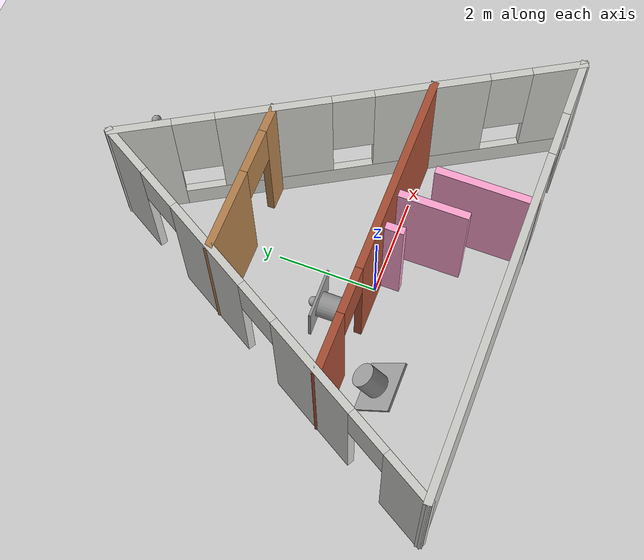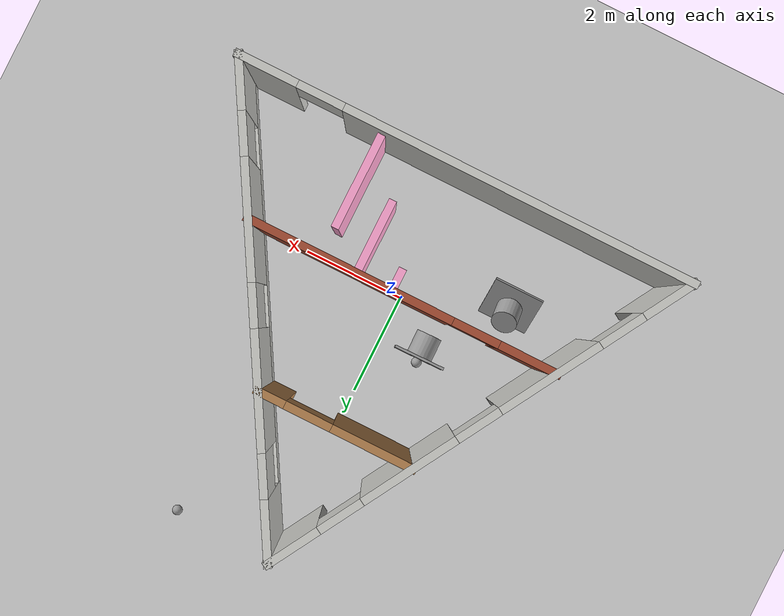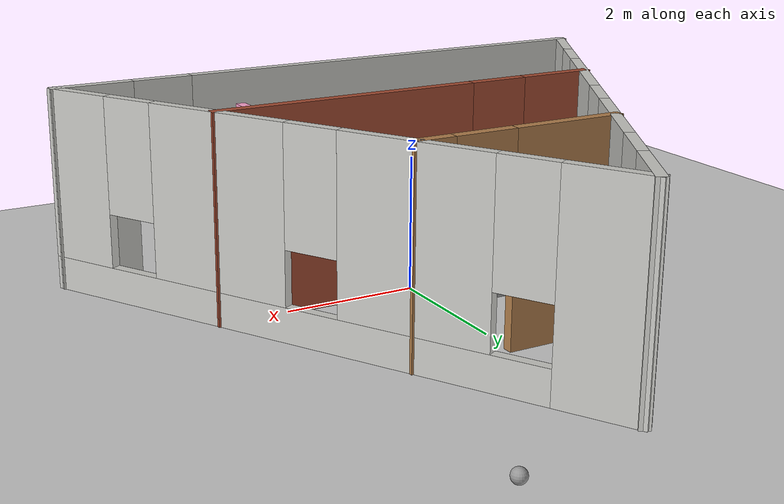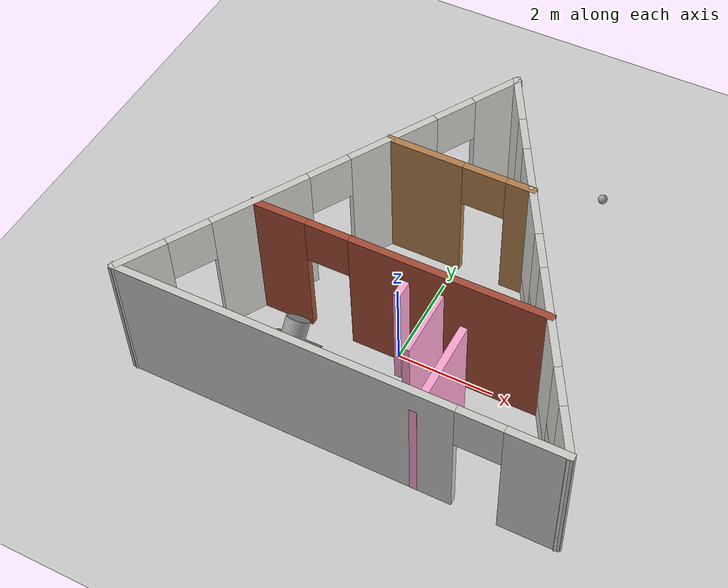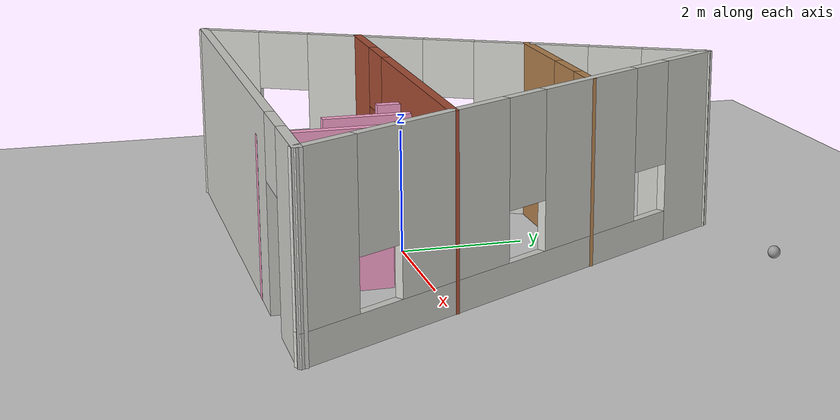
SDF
<sdf version="1.6">
 <world name="default">
  <plugin name="hello" filename="libhello.so"/>
  <light name="sun" type="directional">
   <pose>0 0 10 0 -0 0</pose>
   <diffuse>0.8 0.8 0.8 1</diffuse>
   <specular>0.2 0.2 0.2 1</specular>
   <attenuation>
    <range>1000</range>
    <constant>0.9</constant>
    <linear>0.01</linear>
    <quadratic>0.001</quadratic>
   </attenuation>
   <direction>-0.5 0.1 -0.9</direction>
  </light>
  <model name="ground_plane">
   <static>1</static>
   <link name="link">
    <collision name="collision">
     <geometry><plane><normal>0 0 1</normal><size>100 100</size></plane></geometry>
     <surface>
      <contact><collide_bitmask>65535</collide_bitmask></contact>
      <friction><ode><mu>100</mu><mu2>50</mu2></ode></friction>
     </surface>
    </collision>
    <visual name="visual">
     <cast_shadows>0</cast_shadows>
     <geometry><plane><normal>0 0 1</normal><size>100 100</size></plane></geometry>
     <material>
      <script><uri>file://media/materials/scripts/gazebo.material</uri><name>Gazebo/Grey</name></script>
     </material>
    </visual>
   </link>
  </model>
  <gravity>0 0 -9.8</gravity>
  <magnetic_field>6e-06 2.3e-05 -4.2e-05</magnetic_field>
  <atmosphere type="adiabatic"/>
  <physics name="default_physics" default="0" type="ode">
   <max_step_size>0.001</max_step_size>
   <real_time_factor>1</real_time_factor>
   <real_time_update_rate>1000</real_time_update_rate>
  </physics>
  <scene><ambient>0.4 0.4 0.4 1</ambient><background>0.7 0.7 0.7 1</background><shadows>1</shadows></scene>
  <spherical_coordinates>
   <surface_model>EARTH_WGS84</surface_model>
   <latitude_deg>0</latitude_deg>
   <longitude_deg>0</longitude_deg>
   <elevation>0</elevation>
   <heading_deg>0</heading_deg>
  </spherical_coordinates>
  <model name="roboto">
   <link name="link_1">
    <pose>0 0 0.183333 0 -0 0</pose>
    <inertial>
     <mass>0.152425</mass>
     <inertia>
      <ixx>0.00629725</ixx>
      <ixy>0</ixy>
      <ixz>0</ixz>
      <iyy>0.00629725</iyy>
      <iyz>0</iyz>
      <izz>0.00549224</izz>
     </inertia>
    </inertial>
    <visual name="visual">
     <geometry><cylinder><radius>0.25</radius><length>0.5</length></cylinder></geometry>
     <material>
      <lighting>1</lighting>
      <script><uri>file://media/materials/scripts/gazebo.material</uri><name>Gazebo/Grey</name></script>
      <shader type="pixel"><normal_map>__default__</normal_map></shader>
      <ambient>0.3 0.3 0.3 1</ambient>
      <diffuse>0.7 0.7 0.7 1</diffuse>
      <specular>0.01 0.01 0.01 1</specular>
      <emissive>0 0 0 1</emissive>
     </material>
    </visual>
    <collision name="collision">
     <geometry><cylinder><radius>0.25</radius><length>0.5</length></cylinder></geometry>
     <surface>
      <friction>
       <ode><mu>1</mu><mu2>1</mu2><fdir1>0 0 0</fdir1><slip1>0</slip1><slip2>0</slip2></ode>
       <torsional>
        <coefficient>1</coefficient>
        <patch_radius>0</patch_radius>
        <surface_radius>0</surface_radius>
        <use_patch_radius>1</use_patch_radius>
        <ode><slip>0</slip></ode>
       </torsional>
      </friction>
      <bounce><restitution_coefficient>0</restitution_coefficient><threshold>1e+06</threshold></bounce>
      <contact>
       <collide_without_contact>0</collide_without_contact>
       <collide_without_contact_bitmask>1</collide_without_contact_bitmask>
       <collide_bitmask>1</collide_bitmask>
       <ode>
        <soft_cfm>0</soft_cfm>
        <soft_erp>0.2</soft_erp>
        <kp>1e+13</kp>
        <kd>1</kd>
        <max_vel>0.01</max_vel>
        <min_depth>0</min_depth>
       </ode>
       <bullet>
        <split_impulse>1</split_impulse>
        <split_impulse_penetration_threshold>-0.01</split_impulse_penetration_threshold>
        <soft_cfm>0</soft_cfm>
        <soft_erp>0.2</soft_erp>
        <kp>1e+13</kp>
        <kd>1</kd>
       </bullet>
      </contact>
     </surface>
    </collision>
   </link>
   <link name="link_2">
    <pose>0 0 -0.041667 0 -0 0</pose>
    <inertial>
     <mass>0.0536353</mass>
     <inertia>
      <ixx>0.00448247</ixx>
      <ixy>0</ixy>
      <ixz>0</ixz>
      <iyy>0.00448247</iyy>
      <iyz>0</iyz>
      <izz>0.00893922</izz>
     </inertia>
    </inertial>
    <visual name="visual">
     <geometry><box><size>1 1 0.05</size></box></geometry>
     <material>
      <lighting>1</lighting>
      <script><uri>file://media/materials/scripts/gazebo.material</uri><name>Gazebo/Grey</name></script>
      <shader type="pixel"><normal_map>__default__</normal_map></shader>
      <ambient>0.3 0.3 0.3 1</ambient>
      <diffuse>0.7 0.7 0.7 1</diffuse>
      <specular>0.01 0.01 0.01 1</specular>
      <emissive>0 0 0 1</emissive>
     </material>
    </visual>
    <collision name="collision">
     <geometry><box><size>1 1 0.05</size></box></geometry>
     <surface>
      <friction>
       <ode><mu>1</mu><mu2>1</mu2><fdir1>0 0 0</fdir1><slip1>0</slip1><slip2>0</slip2></ode>
       <torsional>
        <coefficient>1</coefficient>
        <patch_radius>0</patch_radius>
        <surface_radius>0</surface_radius>
        <use_patch_radius>1</use_patch_radius>
        <ode><slip>0</slip></ode>
       </torsional>
      </friction>
      <bounce><restitution_coefficient>0</restitution_coefficient><threshold>1e+06</threshold></bounce>
      <contact>
       <collide_without_contact>0</collide_without_contact>
       <collide_without_contact_bitmask>1</collide_without_contact_bitmask>
       <collide_bitmask>1</collide_bitmask>
       <ode>
        <soft_cfm>0</soft_cfm>
        <soft_erp>0.2</soft_erp>
        <kp>1e+13</kp>
        <kd>1</kd>
        <max_vel>0.01</max_vel>
        <min_depth>0</min_depth>
       </ode>
       <bullet>
        <split_impulse>1</split_impulse>
        <split_impulse_penetration_threshold>-0.01</split_impulse_penetration_threshold>
        <soft_cfm>0</soft_cfm>
        <soft_erp>0.2</soft_erp>
        <kp>1e+13</kp>
        <kd>1</kd>
       </bullet>
      </contact>
     </surface>
    </collision>
   </link>
   <link name="link_3">
    <pose>0 0 -0.141667 0 -0 0</pose>
    <inertial>
     <mass>0.0276939</mass>
     <inertia>
      <ixx>0.00025351</ixx>
      <ixy>0</ixy>
      <ixz>0</ixz>
      <iyy>0.00025351</iyy>
      <iyz>0</iyz>
      <izz>0.00025351</izz>
     </inertia>
    </inertial>
    <visual name="visual">
     <geometry><sphere><radius>0.1</radius></sphere></geometry>
     <material>
      <lighting>1</lighting>
      <script><uri>file://media/materials/scripts/gazebo.material</uri><name>Gazebo/Grey</name></script>
      <shader type="pixel"><normal_map>__default__</normal_map></shader>
      <ambient>0.3 0.3 0.3 1</ambient>
      <diffuse>0.7 0.7 0.7 1</diffuse>
      <specular>0.01 0.01 0.01 1</specular>
      <emissive>0 0 0 1</emissive>
     </material>
    </visual>
    <collision name="collision">
     <geometry><sphere><radius>0.1</radius></sphere></geometry>
     <surface>
      <friction>
       <ode><mu>1</mu><mu2>1</mu2><fdir1>0 0 0</fdir1><slip1>0</slip1><slip2>0</slip2></ode>
       <torsional>
        <coefficient>1</coefficient>
        <patch_radius>0</patch_radius>
        <surface_radius>0</surface_radius>
        <use_patch_radius>1</use_patch_radius>
        <ode><slip>0</slip></ode>
       </torsional>
      </friction>
      <bounce><restitution_coefficient>0</restitution_coefficient><threshold>1e+06</threshold></bounce>
      <contact>
       <collide_without_contact>0</collide_without_contact>
       <collide_without_contact_bitmask>1</collide_without_contact_bitmask>
       <collide_bitmask>1</collide_bitmask>
       <ode>
        <soft_cfm>0</soft_cfm>
        <soft_erp>0.2</soft_erp>
        <kp>1e+13</kp>
        <kd>1</kd>
        <max_vel>0.01</max_vel>
        <min_depth>0</min_depth>
       </ode>
       <bullet>
        <split_impulse>1</split_impulse>
        <split_impulse_penetration_threshold>-0.01</split_impulse_penetration_threshold>
        <soft_cfm>0</soft_cfm>
        <soft_erp>0.2</soft_erp>
        <kp>1e+13</kp>
        <kd>1</kd>
       </bullet>
      </contact>
     </surface>
    </collision>
   </link>
   <joint name="link_2_JOINT_0" type="ball">
    <parent>link_2</parent>
    <child>link_3</child>
    <physics>
     <ode><limit><cfm>0</cfm><erp>0.2</erp></limit><suspension><cfm>0</cfm><erp>0.2</erp></suspension></ode>
    </physics>
   </joint>
   <joint name="link_2_JOINT_1" type="universal">
    <parent>link_2</parent>
    <child>link_1</child>
    <axis>
     <xyz>1 0 0</xyz>
     <use_parent_model_frame>0</use_parent_model_frame>
     <limit>
      <lower>-1.79769e+308</lower>
      <upper>1.79769e+308</upper>
      <effort>-1</effort>
      <velocity>-1</velocity>
     </limit>
     <dynamics>
      <spring_reference>0</spring_reference>
      <spring_stiffness>0</spring_stiffness>
      <damping>0</damping>
     </dynamics>
    </axis>
    <axis2>
     <xyz>0 1 0</xyz>
     <use_parent_model_frame>0</use_parent_model_frame>
     <dynamics>
      <spring_reference>0</spring_reference>
      <spring_stiffness>0</spring_stiffness>
      <damping>0</damping>
     </dynamics>
     <limit>
      <lower>-1.79769e+308</lower>
      <upper>1.79769e+308</upper>
      <effort>-1</effort>
      <velocity>-1</velocity>
     </limit>
    </axis2>
    <physics>
     <ode><limit><cfm>0</cfm><erp>0.2</erp></limit><suspension><cfm>0</cfm><erp>0.2</erp></suspension></ode>
    </physics>
   </joint>
   <static>0</static>
   <pose>-1.95511 -0.753035 0.269349 -0.733623 -0.002444 0.002206</pose>
  </model>
  <model name="building">
   <pose>3.5e-05 1.364 0 0 -0 0</pose>
   <link name="Wall_17">
    <pose>-3.5e-05 -3.832 0 0 -0 3.14159</pose>
    <visual name="Wall_17_Visual_0">
     <pose>-3.88835 0 1.5 0 -0 0</pose>
     <geometry><box><size>1.22339 0.15 3</size></box></geometry>
     <material>
      <script><uri>file://media/materials/scripts/gazebo.material</uri><name>Gazebo/CeilingTiled</name></script>
      <ambient>1 1 1 1</ambient>
     </material>
     <meta><layer>0</layer></meta>
    </visual>
    <collision name="Wall_17_Collision_0">
     <geometry><box><size>1.22339 0.15 3</size></box></geometry>
     <pose>-3.88835 0 1.5 0 -0 0</pose>
    </collision>
    <visual name="Wall_17_Visual_1">
     <pose>1.06169 0 1.5 0 -0 0</pose>
     <geometry><box><size>6.87671 0.15 3</size></box></geometry>
     <material>
      <script><uri>file://media/materials/scripts/gazebo.material</uri><name>Gazebo/CeilingTiled</name></script>
      <ambient>1 1 1 1</ambient>
     </material>
     <meta><layer>0</layer></meta>
    </visual>
    <collision name="Wall_17_Collision_1">
     <geometry><box><size>6.87671 0.15 3</size></box></geometry>
     <pose>1.06169 0 1.5 0 -0 0</pose>
    </collision>
    <visual name="Wall_17_Visual_2">
     <pose>-2.82666 0 2.5 0 -0 0</pose>
     <geometry><box><size>0.9 0.15 1</size></box></geometry>
     <material>
      <script><uri>file://media/materials/scripts/gazebo.material</uri><name>Gazebo/CeilingTiled</name></script>
      <ambient>1 1 1 1</ambient>
     </material>
     <meta><layer>0</layer></meta>
    </visual>
    <collision name="Wall_17_Collision_2">
     <geometry><box><size>0.9 0.15 1</size></box></geometry>
     <pose>-2.82666 0 2.5 0 -0 0</pose>
    </collision>
   </link>
   <link name="Wall_18">
    <pose>-2.21253 0 0 0 -0 1.04718</pose>
    <visual name="Wall_18_Visual_0">
     <pose>-3.94217 0 1.5 0 -0 0</pose>
     <geometry><box><size>1.11539 0.15 3</size></box></geometry>
     <material>
      <script><uri>file://media/materials/scripts/gazebo.material</uri><name>Gazebo/CeilingTiled</name></script>
      <ambient>1 1 1 1</ambient>
     </material>
     <meta><layer>0</layer></meta>
    </visual>
    <collision name="Wall_18_Collision_0">
     <geometry><box><size>1.11539 0.15 3</size></box></geometry>
     <pose>-3.94217 0 1.5 0 -0 0</pose>
    </collision>
    <visual name="Wall_18_Visual_1">
     <pose>-1.44264 0 1.5 0 -0 0</pose>
     <geometry><box><size>2.08366 0.15 3</size></box></geometry>
     <material>
      <script><uri>file://media/materials/scripts/gazebo.material</uri><name>Gazebo/CeilingTiled</name></script>
      <ambient>1 1 1 1</ambient>
     </material>
     <meta><layer>0</layer></meta>
    </visual>
    <collision name="Wall_18_Collision_1">
     <geometry><box><size>2.08366 0.15 3</size></box></geometry>
     <pose>-1.44264 0 1.5 0 -0 0</pose>
    </collision>
    <visual name="Wall_18_Visual_2">
     <pose>1.48473 0 1.5 0 -0 0</pose>
     <geometry><box><size>1.97108 0.15 3</size></box></geometry>
     <material>
      <script><uri>file://media/materials/scripts/gazebo.material</uri><name>Gazebo/CeilingTiled</name></script>
      <ambient>1 1 1 1</ambient>
     </material>
     <meta><layer>0</layer></meta>
    </visual>
    <collision name="Wall_18_Collision_2">
     <geometry><box><size>1.97108 0.15 3</size></box></geometry>
     <pose>1.48473 0 1.5 0 -0 0</pose>
    </collision>
    <visual name="Wall_18_Visual_3">
     <pose>3.93506 0 1.5 0 -0 0</pose>
     <geometry><box><size>1.12959 0.15 3</size></box></geometry>
     <material>
      <script><uri>file://media/materials/scripts/gazebo.material</uri><name>Gazebo/CeilingTiled</name></script>
      <ambient>1 1 1 1</ambient>
     </material>
     <meta><layer>0</layer></meta>
    </visual>
    <collision name="Wall_18_Collision_3">
     <geometry><box><size>1.12959 0.15 3</size></box></geometry>
     <pose>3.93506 0 1.5 0 -0 0</pose>
    </collision>
    <visual name="Wall_18_Visual_4">
     <pose>-2.93447 0 2.5 0 -0 0</pose>
     <geometry><box><size>0.9 0.15 1</size></box></geometry>
     <material>
      <script><uri>file://media/materials/scripts/gazebo.material</uri><name>Gazebo/CeilingTiled</name></script>
      <ambient>1 1 1 1</ambient>
     </material>
     <meta><layer>0</layer></meta>
    </visual>
    <collision name="Wall_18_Collision_4">
     <geometry><box><size>0.9 0.15 1</size></box></geometry>
     <pose>-2.93447 0 2.5 0 -0 0</pose>
    </collision>
    <visual name="Wall_18_Visual_5">
     <pose>0.049189 0 2.5 0 -0 0</pose>
     <geometry><box><size>0.9 0.15 1</size></box></geometry>
     <material>
      <script><uri>file://media/materials/scripts/gazebo.material</uri><name>Gazebo/CeilingTiled</name></script>
      <ambient>1 1 1 1</ambient>
     </material>
     <meta><layer>0</layer></meta>
    </visual>
    <collision name="Wall_18_Collision_5">
     <geometry><box><size>0.9 0.15 1</size></box></geometry>
     <pose>0.049189 0 2.5 0 -0 0</pose>
    </collision>
    <visual name="Wall_18_Visual_6">
     <pose>2.92027 0 2.5 0 -0 0</pose>
     <geometry><box><size>0.9 0.15 1</size></box></geometry>
     <material>
      <script><uri>file://media/materials/scripts/gazebo.material</uri><name>Gazebo/CeilingTiled</name></script>
      <ambient>1 1 1 1</ambient>
     </material>
     <meta><layer>0</layer></meta>
    </visual>
    <collision name="Wall_18_Collision_6">
     <geometry><box><size>0.9 0.15 1</size></box></geometry>
     <pose>2.92027 0 2.5 0 -0 0</pose>
    </collision>
   </link>
   <link name="Wall_19">
    <pose>2.21246 0 0 0 0 -1.04718</pose>
    <visual name="Wall_19_Visual_0">
     <pose>-3.90226 0 1.5 0 -0 0</pose>
     <geometry><box><size>1.19548 0.15 3</size></box></geometry>
     <material>
      <script><uri>file://media/materials/scripts/gazebo.material</uri><name>Gazebo/CeilingTiled</name></script>
      <ambient>1 1 1 1</ambient>
     </material>
     <meta><layer>0</layer></meta>
    </visual>
    <collision name="Wall_19_Collision_0">
     <geometry><box><size>1.19548 0.15 3</size></box></geometry>
     <pose>-3.90226 0 1.5 0 -0 0</pose>
    </collision>
    <visual name="Wall_19_Visual_1">
     <pose>0.597741 0 0.25 0 -0 0</pose>
     <geometry><box><size>7.80452 0.15 0.5</size></box></geometry>
     <material>
      <script><uri>file://media/materials/scripts/gazebo.material</uri><name>Gazebo/CeilingTiled</name></script>
      <ambient>1 1 1 1</ambient>
     </material>
     <meta><layer>0</layer></meta>
    </visual>
    <collision name="Wall_19_Collision_1">
     <geometry><box><size>7.80452 0.15 0.5</size></box></geometry>
     <pose>0.597741 0 0.25 0 -0 0</pose>
    </collision>
    <visual name="Wall_19_Visual_2">
     <pose>-1.42134 0 1.75 0 -0 0</pose>
     <geometry><box><size>2.16636 0.15 2.5</size></box></geometry>
     <material>
      <script><uri>file://media/materials/scripts/gazebo.material</uri><name>Gazebo/CeilingTiled</name></script>
      <ambient>1 1 1 1</ambient>
     </material>
     <meta><layer>0</layer></meta>
    </visual>
    <collision name="Wall_19_Collision_2">
     <geometry><box><size>2.16636 0.15 2.5</size></box></geometry>
     <pose>-1.42134 0 1.75 0 -0 0</pose>
    </collision>
    <visual name="Wall_19_Visual_3">
     <pose>1.55403 0 1.75 0 -0 0</pose>
     <geometry><box><size>2.18438 0.15 2.5</size></box></geometry>
     <material>
      <script><uri>file://media/materials/scripts/gazebo.material</uri><name>Gazebo/CeilingTiled</name></script>
      <ambient>1 1 1 1</ambient>
     </material>
     <meta><layer>0</layer></meta>
    </visual>
    <collision name="Wall_19_Collision_3">
     <geometry><box><size>2.18438 0.15 2.5</size></box></geometry>
     <pose>1.55403 0 1.75 0 -0 0</pose>
    </collision>
    <visual name="Wall_19_Visual_4">
     <pose>3.97311 0 1.75 0 -0 0</pose>
     <geometry><box><size>1.05378 0.15 2.5</size></box></geometry>
     <material>
      <script><uri>file://media/materials/scripts/gazebo.material</uri><name>Gazebo/CeilingTiled</name></script>
      <ambient>1 1 1 1</ambient>
     </material>
     <meta><layer>0</layer></meta>
    </visual>
    <collision name="Wall_19_Collision_4">
     <geometry><box><size>1.05378 0.15 2.5</size></box></geometry>
     <pose>3.97311 0 1.75 0 -0 0</pose>
    </collision>
    <visual name="Wall_19_Visual_5">
     <pose>-2.90452 0 2.15 0 -0 0</pose>
     <geometry><box><size>0.8 0.15 1.7</size></box></geometry>
     <material>
      <script><uri>file://media/materials/scripts/gazebo.material</uri><name>Gazebo/CeilingTiled</name></script>
      <ambient>1 1 1 1</ambient>
     </material>
     <meta><layer>0</layer></meta>
    </visual>
    <collision name="Wall_19_Collision_5">
     <geometry><box><size>0.8 0.15 1.7</size></box></geometry>
     <pose>-2.90452 0 2.15 0 -0 0</pose>
    </collision>
    <visual name="Wall_19_Visual_6">
     <pose>0.061841 0 2.15 0 -0 0</pose>
     <geometry><box><size>0.8 0.15 1.7</size></box></geometry>
     <material>
      <script><uri>file://media/materials/scripts/gazebo.material</uri><name>Gazebo/CeilingTiled</name></script>
      <ambient>1 1 1 1</ambient>
     </material>
     <meta><layer>0</layer></meta>
    </visual>
    <collision name="Wall_19_Collision_6">
     <geometry><box><size>0.8 0.15 1.7</size></box></geometry>
     <pose>0.061841 0 2.15 0 -0 0</pose>
    </collision>
    <visual name="Wall_19_Visual_7">
     <pose>3.04622 0 2.15 0 -0 0</pose>
     <geometry><box><size>0.8 0.15 1.7</size></box></geometry>
     <material>
      <script><uri>file://media/materials/scripts/gazebo.material</uri><name>Gazebo/CeilingTiled</name></script>
      <ambient>1 1 1 1</ambient>
     </material>
     <meta><layer>0</layer></meta>
    </visual>
    <collision name="Wall_19_Collision_7">
     <geometry><box><size>0.8 0.15 1.7</size></box></geometry>
     <pose>3.04622 0 2.15 0 -0 0</pose>
    </collision>
   </link>
   <link name="Wall_21">
    <pose>-3.5e-05 1.234 0 0 -0 0</pose>
    <visual name="Wall_21_Visual_0">
     <pose>-0.748151 0 1.5 0 -0 0</pose>
     <geometry><box><size>1.6537 0.15 3</size></box></geometry>
     <material>
      <script><uri>file://media/materials/scripts/gazebo.material</uri><name>Gazebo/Wood</name></script>
      <ambient>1 1 1 1</ambient>
     </material>
     <meta><layer>0</layer></meta>
    </visual>
    <collision name="Wall_21_Collision_0">
     <geometry><box><size>1.6537 0.15 3</size></box></geometry>
     <pose>-0.748151 0 1.5 0 -0 0</pose>
    </collision>
    <visual name="Wall_21_Visual_1">
     <pose>1.27685 0 1.5 0 -0 0</pose>
     <geometry><box><size>0.596303 0.15 3</size></box></geometry>
     <material>
      <script><uri>file://media/materials/scripts/gazebo.material</uri><name>Gazebo/Wood</name></script>
      <ambient>1 1 1 1</ambient>
     </material>
     <meta><layer>0</layer></meta>
    </visual>
    <collision name="Wall_21_Collision_1">
     <geometry><box><size>0.596303 0.15 3</size></box></geometry>
     <pose>1.27685 0 1.5 0 -0 0</pose>
    </collision>
    <visual name="Wall_21_Visual_2">
     <pose>0.528697 0 2.5 0 -0 0</pose>
     <geometry><box><size>0.9 0.15 1</size></box></geometry>
     <material>
      <script><uri>file://media/materials/scripts/gazebo.material</uri><name>Gazebo/Wood</name></script>
      <ambient>1 1 1 1</ambient>
     </material>
     <meta><layer>0</layer></meta>
    </visual>
    <collision name="Wall_21_Collision_2">
     <geometry><box><size>0.9 0.15 1</size></box></geometry>
     <pose>0.528697 0 2.5 0 -0 0</pose>
    </collision>
   </link>
   <link name="Wall_23">
    <pose>-3.5e-05 -1.364 0 0 -0 0</pose>
    <visual name="Wall_23_Visual_0">
     <pose>-2.47728 0 1.5 0 -0 0</pose>
     <geometry><box><size>1.19543 0.15 3</size></box></geometry>
     <material>
      <script><uri>file://media/materials/scripts/gazebo.material</uri><name>Gazebo/Bricks</name></script>
      <ambient>1 1 1 1</ambient>
     </material>
     <meta><layer>0</layer></meta>
    </visual>
    <collision name="Wall_23_Collision_0">
     <geometry><box><size>1.19543 0.15 3</size></box></geometry>
     <pose>-2.47728 0 1.5 0 -0 0</pose>
    </collision>
    <visual name="Wall_23_Visual_1">
     <pose>1.04772 0 1.5 0 -0 0</pose>
     <geometry><box><size>4.05457 0.15 3</size></box></geometry>
     <material>
      <script><uri>file://media/materials/scripts/gazebo.material</uri><name>Gazebo/Bricks</name></script>
      <ambient>1 1 1 1</ambient>
     </material>
     <meta><layer>0</layer></meta>
    </visual>
    <collision name="Wall_23_Collision_1">
     <geometry><box><size>4.05457 0.15 3</size></box></geometry>
     <pose>1.04772 0 1.5 0 -0 0</pose>
    </collision>
    <visual name="Wall_23_Visual_2">
     <pose>-1.42957 0 2.5 0 -0 0</pose>
     <geometry><box><size>0.9 0.15 1</size></box></geometry>
     <material>
      <script><uri>file://media/materials/scripts/gazebo.material</uri><name>Gazebo/Bricks</name></script>
      <ambient>1 1 1 1</ambient>
     </material>
     <meta><layer>0</layer></meta>
    </visual>
    <collision name="Wall_23_Collision_2">
     <geometry><box><size>0.9 0.15 1</size></box></geometry>
     <pose>-1.42957 0 2.5 0 -0 0</pose>
    </collision>
   </link>
   <link name="Wall_27">
    <collision name="Wall_27_Collision">
     <geometry><box><size>2 0.15 2.5</size></box></geometry>
     <pose>0 0 1.25 0 -0 0</pose>
    </collision>
    <visual name="Wall_27_Visual">
     <pose>0 0 1.25 0 -0 0</pose>
     <geometry><box><size>2 0.15 2.5</size></box></geometry>
     <material>
      <script><uri>file://media/materials/scripts/gazebo.material</uri><name>Gazebo/Grey</name></script>
      <ambient>1 0.647059 0.819608 1</ambient>
     </material>
     <meta><layer>0</layer></meta>
    </visual>
    <pose>1.60797 -2.909 0 0 -0 1.5708</pose>
   </link>
   <link name="Wall_32">
    <collision name="Wall_32_Collision">
     <geometry><box><size>1.5 0.15 2.5</size></box></geometry>
     <pose>0 0 1.25 0 -0 0</pose>
    </collision>
    <visual name="Wall_32_Visual">
     <pose>0 0 1.25 0 -0 0</pose>
     <geometry><box><size>1.5 0.15 2.5</size></box></geometry>
     <material>
      <script><uri>file://media/materials/scripts/gazebo.material</uri><name>Gazebo/Grey</name></script>
      <ambient>1 0.647059 0.819608 1</ambient>
     </material>
     <meta><layer>0</layer></meta>
    </visual>
    <pose>0.907965 -2.059 0 0 0 -1.5708</pose>
   </link>
   <link name="Wall_36">
    <collision name="Wall_36_Collision">
     <geometry><box><size>0.5 0.15 2.5</size></box></geometry>
     <pose>0 0 1.25 0 -0 0</pose>
    </collision>
    <visual name="Wall_36_Visual">
     <pose>0 0 1.25 0 -0 0</pose>
     <geometry><box><size>0.5 0.15 2.5</size></box></geometry>
     <material>
      <script><uri>file://media/materials/scripts/gazebo.material</uri><name>Gazebo/Grey</name></script>
      <ambient>1 0.647059 0.819608 1</ambient>
     </material>
     <meta><layer>0</layer></meta>
    </visual>
    <pose>0.207706 -1.55923 0 0 0 -1.5708</pose>
   </link>
   <static>1</static>
  </model>
  <model name="roboto_clone">
   <link name="link_1">
    <pose>0 0 0.183333 0 -0 0</pose>
    <inertial>
     <mass>0.152425</mass>
     <inertia>
      <ixx>0.00629725</ixx>
      <ixy>0</ixy>
      <ixz>0</ixz>
      <iyy>0.00629725</iyy>
      <iyz>0</iyz>
      <izz>0.00549224</izz>
     </inertia>
    </inertial>
    <visual name="visual">
     <geometry><cylinder><radius>0.25</radius><length>0.5</length></cylinder></geometry>
     <material>
      <lighting>1</lighting>
      <script><uri>file://media/materials/scripts/gazebo.material</uri><name>Gazebo/Grey</name></script>
      <shader type="pixel"><normal_map>__default__</normal_map></shader>
      <ambient>0.3 0.3 0.3 1</ambient>
      <diffuse>0.7 0.7 0.7 1</diffuse>
      <specular>0.01 0.01 0.01 1</specular>
      <emissive>0 0 0 1</emissive>
     </material>
    </visual>
    <collision name="collision">
     <geometry><cylinder><radius>0.25</radius><length>0.5</length></cylinder></geometry>
     <surface>
      <friction>
       <ode><mu>1</mu><mu2>1</mu2><fdir1>0 0 0</fdir1><slip1>0</slip1><slip2>0</slip2></ode>
       <torsional>
        <coefficient>1</coefficient>
        <patch_radius>0</patch_radius>
        <surface_radius>0</surface_radius>
        <use_patch_radius>1</use_patch_radius>
        <ode><slip>0</slip></ode>
       </torsional>
      </friction>
      <bounce><restitution_coefficient>0</restitution_coefficient><threshold>1e+06</threshold></bounce>
      <contact>
       <collide_without_contact>0</collide_without_contact>
       <collide_without_contact_bitmask>1</collide_without_contact_bitmask>
       <collide_bitmask>1</collide_bitmask>
       <ode>
        <soft_cfm>0</soft_cfm>
        <soft_erp>0.2</soft_erp>
        <kp>1e+13</kp>
        <kd>1</kd>
        <max_vel>0.01</max_vel>
        <min_depth>0</min_depth>
       </ode>
       <bullet>
        <split_impulse>1</split_impulse>
        <split_impulse_penetration_threshold>-0.01</split_impulse_penetration_threshold>
        <soft_cfm>0</soft_cfm>
        <soft_erp>0.2</soft_erp>
        <kp>1e+13</kp>
        <kd>1</kd>
       </bullet>
      </contact>
     </surface>
    </collision>
   </link>
   <link name="link_2">
    <pose>0 0 -0.041667 0 -0 0</pose>
    <inertial>
     <mass>0.0536353</mass>
     <inertia>
      <ixx>0.00448247</ixx>
      <ixy>0</ixy>
      <ixz>0</ixz>
      <iyy>0.00448247</iyy>
      <iyz>0</iyz>
      <izz>0.00893922</izz>
     </inertia>
    </inertial>
    <visual name="visual">
     <geometry><box><size>1 1 0.05</size></box></geometry>
     <material>
      <lighting>1</lighting>
      <script><uri>file://media/materials/scripts/gazebo.material</uri><name>Gazebo/Grey</name></script>
      <shader type="pixel"><normal_map>__default__</normal_map></shader>
      <ambient>0.3 0.3 0.3 1</ambient>
      <diffuse>0.7 0.7 0.7 1</diffuse>
      <specular>0.01 0.01 0.01 1</specular>
      <emissive>0 0 0 1</emissive>
     </material>
    </visual>
    <collision name="collision">
     <geometry><box><size>1 1 0.05</size></box></geometry>
     <surface>
      <friction>
       <ode><mu>1</mu><mu2>1</mu2><fdir1>0 0 0</fdir1><slip1>0</slip1><slip2>0</slip2></ode>
       <torsional>
        <coefficient>1</coefficient>
        <patch_radius>0</patch_radius>
        <surface_radius>0</surface_radius>
        <use_patch_radius>1</use_patch_radius>
        <ode><slip>0</slip></ode>
       </torsional>
      </friction>
      <bounce><restitution_coefficient>0</restitution_coefficient><threshold>1e+06</threshold></bounce>
      <contact>
       <collide_without_contact>0</collide_without_contact>
       <collide_without_contact_bitmask>1</collide_without_contact_bitmask>
       <collide_bitmask>1</collide_bitmask>
       <ode>
        <soft_cfm>0</soft_cfm>
        <soft_erp>0.2</soft_erp>
        <kp>1e+13</kp>
        <kd>1</kd>
        <max_vel>0.01</max_vel>
        <min_depth>0</min_depth>
       </ode>
       <bullet>
        <split_impulse>1</split_impulse>
        <split_impulse_penetration_threshold>-0.01</split_impulse_penetration_threshold>
        <soft_cfm>0</soft_cfm>
        <soft_erp>0.2</soft_erp>
        <kp>1e+13</kp>
        <kd>1</kd>
       </bullet>
      </contact>
     </surface>
    </collision>
   </link>
   <link name="link_3">
    <pose>0 0 -0.141667 0 -0 0</pose>
    <inertial>
     <mass>0.0276939</mass>
     <inertia>
      <ixx>0.00025351</ixx>
      <ixy>0</ixy>
      <ixz>0</ixz>
      <iyy>0.00025351</iyy>
      <iyz>0</iyz>
      <izz>0.00025351</izz>
     </inertia>
    </inertial>
    <visual name="visual">
     <geometry><sphere><radius>0.1</radius></sphere></geometry>
     <material>
      <lighting>1</lighting>
      <script><uri>file://media/materials/scripts/gazebo.material</uri><name>Gazebo/Grey</name></script>
      <shader type="pixel"><normal_map>__default__</normal_map></shader>
      <ambient>0.3 0.3 0.3 1</ambient>
      <diffuse>0.7 0.7 0.7 1</diffuse>
      <specular>0.01 0.01 0.01 1</specular>
      <emissive>0 0 0 1</emissive>
     </material>
    </visual>
    <collision name="collision">
     <geometry><sphere><radius>0.1</radius></sphere></geometry>
     <surface>
      <friction>
       <ode><mu>1</mu><mu2>1</mu2><fdir1>0 0 0</fdir1><slip1>0</slip1><slip2>0</slip2></ode>
       <torsional>
        <coefficient>1</coefficient>
        <patch_radius>0</patch_radius>
        <surface_radius>0</surface_radius>
        <use_patch_radius>1</use_patch_radius>
        <ode><slip>0</slip></ode>
       </torsional>
      </friction>
      <bounce><restitution_coefficient>0</restitution_coefficient><threshold>1e+06</threshold></bounce>
      <contact>
       <collide_without_contact>0</collide_without_contact>
       <collide_without_contact_bitmask>1</collide_without_contact_bitmask>
       <collide_bitmask>1</collide_bitmask>
       <ode>
        <soft_cfm>0</soft_cfm>
        <soft_erp>0.2</soft_erp>
        <kp>1e+13</kp>
        <kd>1</kd>
        <max_vel>0.01</max_vel>
        <min_depth>0</min_depth>
       </ode>
       <bullet>
        <split_impulse>1</split_impulse>
        <split_impulse_penetration_threshold>-0.01</split_impulse_penetration_threshold>
        <soft_cfm>0</soft_cfm>
        <soft_erp>0.2</soft_erp>
        <kp>1e+13</kp>
        <kd>1</kd>
       </bullet>
      </contact>
     </surface>
    </collision>
   </link>
   <joint name="link_2_JOINT_0" type="ball">
    <parent>link_2</parent>
    <child>link_3</child>
    <physics>
     <ode><limit><cfm>0</cfm><erp>0.2</erp></limit><suspension><cfm>0</cfm><erp>0.2</erp></suspension></ode>
    </physics>
   </joint>
   <joint name="link_2_JOINT_1" type="universal">
    <parent>link_2</parent>
    <child>link_1</child>
    <axis>
     <xyz>1 0 0</xyz>
     <use_parent_model_frame>0</use_parent_model_frame>
     <limit>
      <lower>-1.79769e+308</lower>
      <upper>1.79769e+308</upper>
      <effort>-1</effort>
      <velocity>-1</velocity>
     </limit>
     <dynamics>
      <spring_reference>0</spring_reference>
      <spring_stiffness>0</spring_stiffness>
      <damping>0</damping>
     </dynamics>
    </axis>
    <axis2>
     <xyz>0 1 0</xyz>
     <use_parent_model_frame>0</use_parent_model_frame>
     <dynamics>
      <spring_reference>0</spring_reference>
      <spring_stiffness>0</spring_stiffness>
      <damping>0</damping>
     </dynamics>
     <limit>
      <lower>-1.79769e+308</lower>
      <upper>1.79769e+308</upper>
      <effort>-1</effort>
      <velocity>-1</velocity>
     </limit>
    </axis2>
    <physics>
     <ode><limit><cfm>0</cfm><erp>0.2</erp></limit><suspension><cfm>0</cfm><erp>0.2</erp></suspension></ode>
    </physics>
   </joint>
   <static>0</static>
   <pose>-0.81771 0.818839 0.417545 1.59796 0.000243 0.016131</pose>
  </model>
  <model name="my_ball">
   <link name="link_0">
    <inertial>
     <mass>1</mass>
     <inertia><ixx>0.1</ixx><ixy>0</ixy><ixz>0</ixz><iyy>0.1</iyy><iyz>0</iyz><izz>0.1</izz></inertia>
    </inertial>
    <visual name="visual">
     <geometry><sphere><radius>0.1</radius></sphere></geometry>
     <material>
      <lighting>1</lighting>
      <script><uri>file://media/materials/scripts/gazebo.material</uri><name>Gazebo/Grey</name></script>
      <shader type="pixel"><normal_map>__default__</normal_map></shader>
      <ambient>1 1 1 1</ambient>
      <diffuse>1 1 1 1</diffuse>
      <specular>1 1 1 1</specular>
      <emissive>1 1 1 1</emissive>
     </material>
    </visual>
    <collision name="collision">
     <geometry><sphere><radius>0.1</radius></sphere></geometry>
     <surface>
      <friction>
       <ode><mu>1</mu><mu2>1</mu2><fdir1>0 0 0</fdir1><slip1>0</slip1><slip2>0</slip2></ode>
       <torsional>
        <coefficient>1</coefficient>
        <patch_radius>0</patch_radius>
        <surface_radius>0</surface_radius>
        <use_patch_radius>1</use_patch_radius>
        <ode><slip>0</slip></ode>
       </torsional>
      </friction>
      <bounce><restitution_coefficient>0</restitution_coefficient><threshold>1e+06</threshold></bounce>
      <contact>
       <collide_without_contact>0</collide_without_contact>
       <collide_without_contact_bitmask>1</collide_without_contact_bitmask>
       <collide_bitmask>1</collide_bitmask>
       <ode>
        <soft_cfm>0</soft_cfm>
        <soft_erp>0.2</soft_erp>
        <kp>1e+13</kp>
        <kd>1</kd>
        <max_vel>0.01</max_vel>
        <min_depth>0</min_depth>
       </ode>
       <bullet>
        <split_impulse>1</split_impulse>
        <split_impulse_penetration_threshold>-0.01</split_impulse_penetration_threshold>
        <soft_cfm>0</soft_cfm>
        <soft_erp>0.2</soft_erp>
        <kp>1e+13</kp>
        <kd>1</kd>
       </bullet>
      </contact>
     </surface>
    </collision>
   </link>
   <static>0</static>
   <pose>2.00475 5.58286 0.1 0 -0 0</pose>
  </model>
 </world>
</sdf>
